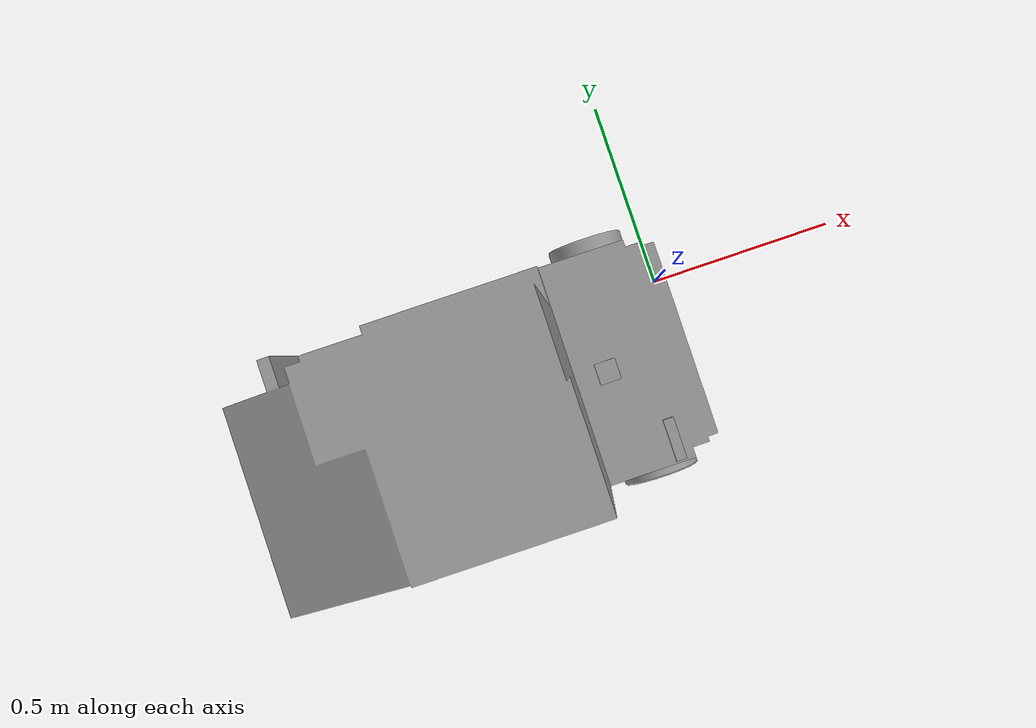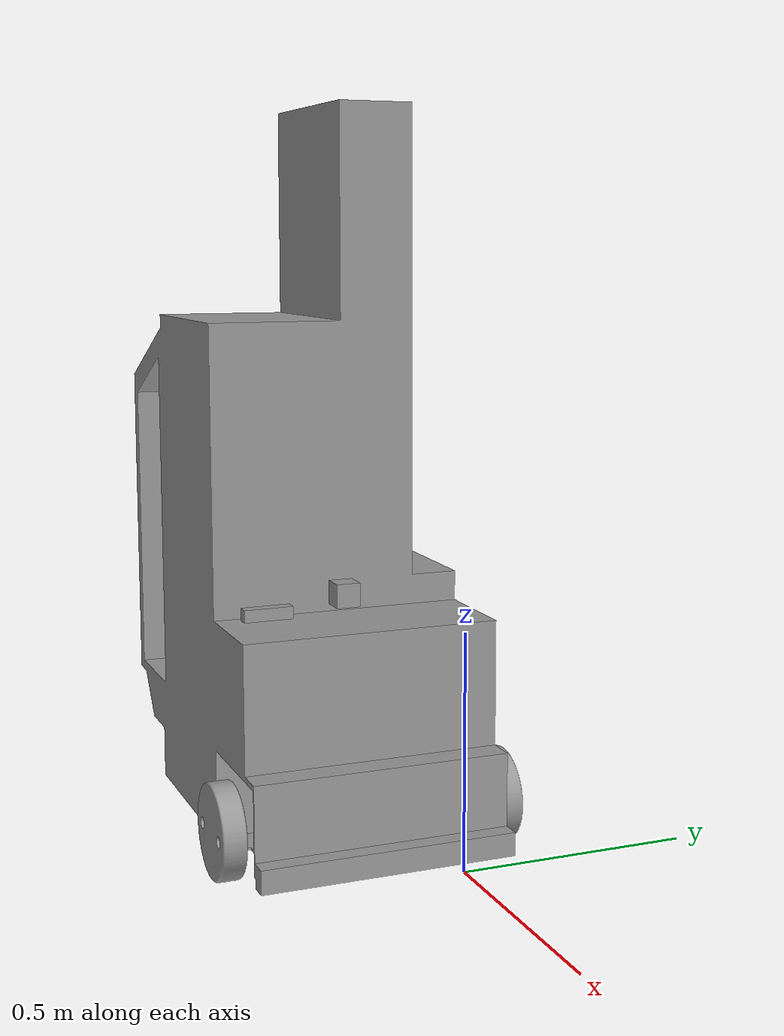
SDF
<?xml version='1.0'?>
<sdf version='1.6'>
  <model name='Robopac2'>
    <link name='main'>
      <inertial>
        <mass>1</mass>
        <inertia>
          <ixx>0.166667</ixx>
          <ixy>0</ixy>
          <ixz>0</ixz>
          <iyy>0.166667</iyy>
          <iyz>0</iyz>
          <izz>0.166667</izz>
        </inertia>
        <pose frame=''>0 0 0 0 -0 0</pose>
      </inertial>
      <pose frame=''>-0.422 -0.17 0.25 1.5708 0 -1.57079</pose>
      <gravity>1</gravity>
      <self_collide>0</self_collide>
      <kinematic>0</kinematic>
      <enable_wind>0</enable_wind>
      <visual name='visual'>
        <pose frame=''>-0.27 -0.22 -0.45 0 -0 0</pose>
        <geometry>
          <mesh>
            <uri>model://Robopac2/meshes/SuperSimple.STL</uri>
            <scale>0.001 0.001 0.001</scale>
          </mesh>
        </geometry>
        <material>
          <lighting>1</lighting>
          <script>
            <uri>file://media/materials/scripts/gazebo.material</uri>
            <name>Gazebo/Grey</name>
          </script>
          <shader type='pixel'>
            <normal_map>__default__</normal_map>
          </shader>
          <ambient>0.3 0.3 0.3 1</ambient>
          <diffuse>0.7 0.7 0.7 1</diffuse>
          <specular>0.01 0.01 0.01 1</specular>
          <emissive>0 0 0 1</emissive>
        </material>
        <transparency>0</transparency>
        <cast_shadows>1</cast_shadows>
      </visual>
      <collision name='collision'>
        <laser_retro>0</laser_retro>
        <max_contacts>10</max_contacts>
        <pose frame=''>-0.27 -0.22 -0.45 0 -0 0</pose>
        <geometry>
          <mesh>
            <uri>/home/ubuntu/Firmware/Tools/sitl_gazebo/models/Robopac2/meshes/SuperSimple.STL</uri>
            <scale>0.001 0.001 0.001</scale>
          </mesh>
        </geometry>
        <surface>
          <friction>
            <ode>
              <mu>1</mu>
              <mu2>1</mu2>
              <fdir1>0 0 0</fdir1>
              <slip1>0</slip1>
              <slip2>0</slip2>
            </ode>
            <torsional>
              <coefficient>1</coefficient>
              <patch_radius>0</patch_radius>
              <surface_radius>0</surface_radius>
              <use_patch_radius>1</use_patch_radius>
              <ode>
                <slip>0</slip>
              </ode>
            </torsional>
          </friction>
          <bounce>
            <restitution_coefficient>0</restitution_coefficient>
            <threshold>1e+06</threshold>
          </bounce>
          <contact>
            <collide_without_contact>0</collide_without_contact>
            <collide_without_contact_bitmask>1</collide_without_contact_bitmask>
            <collide_bitmask>1</collide_bitmask>
            <ode>
              <soft_cfm>0</soft_cfm>
              <soft_erp>0.2</soft_erp>
              <kp>1e+13</kp>
              <kd>1</kd>
              <max_vel>0.01</max_vel>
              <min_depth>0</min_depth>
            </ode>
            <bullet>
              <split_impulse>1</split_impulse>
              <split_impulse_penetration_threshold>-0.01</split_impulse_penetration_threshold>
              <soft_cfm>0</soft_cfm>
              <soft_erp>0.2</soft_erp>
              <kp>1e+13</kp>
              <kd>1</kd>
            </bullet>
          </contact>
        </surface>
      </collision>
    </link>
    <link name='backruotad'>
      <inertial>
        <mass>1</mass>
        <inertia>
          <ixx>0.1</ixx>
          <ixy>0</ixy>
          <ixz>0</ixz>
          <iyy>0.1</iyy>
          <iyz>0</iyz>
          <izz>0.1</izz>
        </inertia>
        <pose frame=''>0 0 0 0 -0 0</pose>
      </inertial>
      <pose frame=''>-0.848534 -0.352602 0.05 0 -0 0</pose>
      <gravity>1</gravity>
      <self_collide>0</self_collide>
      <kinematic>0</kinematic>
      <enable_wind>0</enable_wind>
      <visual name='visual'>
        <pose frame=''>0 0 0 0 -0 0</pose>
        <geometry>
          <sphere>
            <radius>0.05</radius>
          </sphere>
        </geometry>
        <material>
          <lighting>1</lighting>
          <script>
            <uri>file://media/materials/scripts/gazebo.material</uri>
            <name>Gazebo/Grey</name>
          </script>
          <shader type='pixel'>
            <normal_map>__default__</normal_map>
          </shader>
          <ambient>0.3 0.3 0.3 1</ambient>
          <diffuse>0.7 0.7 0.7 1</diffuse>
          <specular>0.01 0.01 0.01 1</specular>
          <emissive>0 0 0 1</emissive>
        </material>
        <transparency>0</transparency>
        <cast_shadows>1</cast_shadows>
      </visual>
      <collision name='collision'>
        <laser_retro>0</laser_retro>
        <max_contacts>10</max_contacts>
        <pose frame=''>0 0 0 0 -0 0</pose>
        <geometry>
          <sphere>
            <radius>0.05</radius>
          </sphere>
        </geometry>
        <surface>
          <friction>
            <ode>
              <mu>1</mu>
              <mu2>1</mu2>
              <fdir1>0 0 0</fdir1>
              <slip1>0</slip1>
              <slip2>0</slip2>
            </ode>
            <torsional>
              <coefficient>1</coefficient>
              <patch_radius>0</patch_radius>
              <surface_radius>0</surface_radius>
              <use_patch_radius>1</use_patch_radius>
              <ode>
                <slip>0</slip>
              </ode>
            </torsional>
          </friction>
          <bounce>
            <restitution_coefficient>0</restitution_coefficient>
            <threshold>1e+06</threshold>
          </bounce>
          <contact>
            <collide_without_contact>0</collide_without_contact>
            <collide_without_contact_bitmask>1</collide_without_contact_bitmask>
            <collide_bitmask>1</collide_bitmask>
            <ode>
              <soft_cfm>0</soft_cfm>
              <soft_erp>0.2</soft_erp>
              <kp>1e+13</kp>
              <kd>1</kd>
              <max_vel>0.01</max_vel>
              <min_depth>0</min_depth>
            </ode>
            <bullet>
              <split_impulse>1</split_impulse>
              <split_impulse_penetration_threshold>-0.01</split_impulse_penetration_threshold>
              <soft_cfm>0</soft_cfm>
              <soft_erp>0.2</soft_erp>
              <kp>1e+13</kp>
              <kd>1</kd>
            </bullet>
          </contact>
        </surface>
      </collision>
    </link>
    <link name='backruotas'>
      <inertial>
        <mass>1</mass>
        <inertia>
          <ixx>0.1</ixx>
          <ixy>0</ixy>
          <ixz>0</ixz>
          <iyy>0.1</iyy>
          <iyz>0</iyz>
          <izz>0.1</izz>
        </inertia>
        <pose frame=''>0 0 0 0 -0 0</pose>
      </inertial>
      <pose frame=''>-0.848534 -0.023095 0.05 0 -0 0</pose>
      <gravity>1</gravity>
      <self_collide>0</self_collide>
      <kinematic>0</kinematic>
      <enable_wind>0</enable_wind>
      <visual name='visual'>
        <pose frame=''>0 0 0 0 -0 0</pose>
        <geometry>
          <sphere>
            <radius>0.05</radius>
          </sphere>
        </geometry>
        <material>
          <lighting>1</lighting>
          <script>
            <uri>file://media/materials/scripts/gazebo.material</uri>
            <name>Gazebo/Grey</name>
          </script>
          <shader type='pixel'>
            <normal_map>__default__</normal_map>
          </shader>
          <ambient>0.3 0.3 0.3 1</ambient>
          <diffuse>0.7 0.7 0.7 1</diffuse>
          <specular>0.01 0.01 0.01 1</specular>
          <emissive>0 0 0 1</emissive>
        </material>
        <transparency>0</transparency>
        <cast_shadows>1</cast_shadows>
      </visual>
      <collision name='collision'>
        <laser_retro>0</laser_retro>
        <max_contacts>10</max_contacts>
        <pose frame=''>0 0 0 0 -0 0</pose>
        <geometry>
          <sphere>
            <radius>0.05</radius>
          </sphere>
        </geometry>
        <surface>
          <friction>
            <ode>
              <mu>1</mu>
              <mu2>1</mu2>
              <fdir1>0 0 0</fdir1>
              <slip1>0</slip1>
              <slip2>0</slip2>
            </ode>
            <torsional>
              <coefficient>1</coefficient>
              <patch_radius>0</patch_radius>
              <surface_radius>0</surface_radius>
              <use_patch_radius>1</use_patch_radius>
              <ode>
                <slip>0</slip>
              </ode>
            </torsional>
          </friction>
          <bounce>
            <restitution_coefficient>0</restitution_coefficient>
            <threshold>1e+06</threshold>
          </bounce>
          <contact>
            <collide_without_contact>0</collide_without_contact>
            <collide_without_contact_bitmask>1</collide_without_contact_bitmask>
            <collide_bitmask>1</collide_bitmask>
            <ode>
              <soft_cfm>0</soft_cfm>
              <soft_erp>0.2</soft_erp>
              <kp>1e+13</kp>
              <kd>1</kd>
              <max_vel>0.01</max_vel>
              <min_depth>0</min_depth>
            </ode>
            <bullet>
              <split_impulse>1</split_impulse>
              <split_impulse_penetration_threshold>-0.01</split_impulse_penetration_threshold>
              <soft_cfm>0</soft_cfm>
              <soft_erp>0.2</soft_erp>
              <kp>1e+13</kp>
              <kd>1</kd>
            </bullet>
          </contact>
        </surface>
      </collision>
    </link>
    <link name='frontruotad'>
      <inertial>
        <mass>1</mass>
        <inertia>
          <ixx>0.166667</ixx>
          <ixy>0</ixy>
          <ixz>0</ixz>
          <iyy>0.166667</iyy>
          <iyz>0</iyz>
          <izz>0.166667</izz>
        </inertia>
        <pose frame=''>0 0 0.1 0 -0 0</pose>
      </inertial>
      <pose frame=''>-0.148764 -0.469258 0.101033 1.5708 0 -1.5708</pose>
      <gravity>1</gravity>
      <self_collide>0</self_collide>
      <kinematic>0</kinematic>
      <enable_wind>0</enable_wind>
      <visual name='visual'>
        <pose frame=''>-0.3 -0.1 -0.1 0 -0 0</pose>
        <geometry>
          <mesh>
            <uri>model://Robopac2/meshes/RuotaD.STL</uri>
            <scale>0.001 0.001 0.001</scale>
          </mesh>
        </geometry>
        <material>
          <lighting>1</lighting>
          <script>
            <uri>file://media/materials/scripts/gazebo.material</uri>
            <name>Gazebo/Grey</name>
          </script>
          <shader type='pixel'>
            <normal_map>__default__</normal_map>
          </shader>
          <ambient>0.3 0.3 0.3 1</ambient>
          <diffuse>0.7 0.7 0.7 1</diffuse>
          <specular>0.01 0.01 0.01 1</specular>
          <emissive>0 0 0 1</emissive>
        </material>
        <transparency>0</transparency>
        <cast_shadows>1</cast_shadows>
      </visual>
      <collision name='collision'>
        <laser_retro>0</laser_retro>
        <max_contacts>10</max_contacts>
        <pose frame=''>-0.295 -0.1 -0.1 0 -0 0</pose>
        <geometry>
          <mesh>
            <uri>/home/ubuntu/Firmware/Tools/sitl_gazebo/models/Robopac2/meshes/RuotaD.STL</uri>
            <scale>0.001 0.001 0.001</scale>
          </mesh>
        </geometry>
        <surface>
          <friction>
            <ode>
              <mu>1</mu>
              <mu2>1</mu2>
              <fdir1>0 0 0</fdir1>
              <slip1>0</slip1>
              <slip2>0</slip2>
            </ode>
            <torsional>
              <coefficient>1</coefficient>
              <patch_radius>0</patch_radius>
              <surface_radius>0</surface_radius>
              <use_patch_radius>1</use_patch_radius>
              <ode>
                <slip>0</slip>
              </ode>
            </torsional>
          </friction>
          <bounce>
            <restitution_coefficient>0</restitution_coefficient>
            <threshold>1e+06</threshold>
          </bounce>
          <contact>
            <collide_without_contact>0</collide_without_contact>
            <collide_without_contact_bitmask>1</collide_without_contact_bitmask>
            <collide_bitmask>1</collide_bitmask>
            <ode>
              <soft_cfm>0</soft_cfm>
              <soft_erp>0.2</soft_erp>
              <kp>1e+13</kp>
              <kd>1</kd>
              <max_vel>0.01</max_vel>
              <min_depth>0</min_depth>
            </ode>
            <bullet>
              <split_impulse>1</split_impulse>
              <split_impulse_penetration_threshold>-0.01</split_impulse_penetration_threshold>
              <soft_cfm>0</soft_cfm>
              <soft_erp>0.2</soft_erp>
              <kp>1e+13</kp>
              <kd>1</kd>
            </bullet>
          </contact>
        </surface>
      </collision>
    </link>
    <link name='frontruotas'>
      <inertial>
        <mass>2</mass>
        <inertia>
          <ixx>0</ixx>
          <ixy>0</ixy>
          <ixz>0</ixz>
          <iyy>0</iyy>
          <iyz>0</iyz>
          <izz>0</izz>
        </inertia>
        <pose frame=''>0 0 0 0 -0 0</pose>
      </inertial>
      <pose frame=''>-0.15 0.135756 0.1 1.5708 0 -1.5708</pose>
      <gravity>1</gravity>
      <self_collide>0</self_collide>
      <kinematic>0</kinematic>
      <enable_wind>0</enable_wind>
      <visual name='visual'>
        <pose frame=''>-0.025 -0.1 -0.1 0 -0 0</pose>
        <geometry>
          <mesh>
            <uri>model://Robopac2/meshes/RuotaS.STL</uri>
            <scale>0.001 0.001 0.001</scale>
          </mesh>
        </geometry>
        <material>
          <lighting>1</lighting>
          <script>
            <uri>file://media/materials/scripts/gazebo.material</uri>
            <name>Gazebo/Grey</name>
          </script>
          <shader type='pixel'>
            <normal_map>__default__</normal_map>
          </shader>
          <ambient>0.3 0.3 0.3 1</ambient>
          <diffuse>0.7 0.7 0.7 1</diffuse>
          <specular>0.01 0.01 0.01 1</specular>
          <emissive>0 0 0 1</emissive>
        </material>
        <transparency>0</transparency>
        <cast_shadows>1</cast_shadows>
      </visual>
      <collision name='collision'>
        <laser_retro>0</laser_retro>
        <max_contacts>10</max_contacts>
        <pose frame=''>-0.025 -0.1 -0.1 0 -0 0</pose>
        <geometry>
          <mesh>
            <uri>/home/ubuntu/Firmware/Tools/sitl_gazebo/models/Robopac2/meshes/RuotaS.STL</uri>
            <scale>0.001 0.001 0.001</scale>
          </mesh>
        </geometry>
        <surface>
          <friction>
            <ode>
              <mu>1</mu>
              <mu2>1</mu2>
              <fdir1>0 0 0</fdir1>
              <slip1>0</slip1>
              <slip2>0</slip2>
            </ode>
            <torsional>
              <coefficient>1</coefficient>
              <patch_radius>0</patch_radius>
              <surface_radius>0</surface_radius>
              <use_patch_radius>1</use_patch_radius>
              <ode>
                <slip>0</slip>
              </ode>
            </torsional>
          </friction>
          <bounce>
            <restitution_coefficient>0</restitution_coefficient>
            <threshold>1e+06</threshold>
          </bounce>
          <contact>
            <collide_without_contact>0</collide_without_contact>
            <collide_without_contact_bitmask>1</collide_without_contact_bitmask>
            <collide_bitmask>1</collide_bitmask>
            <ode>
              <soft_cfm>0</soft_cfm>
              <soft_erp>0.2</soft_erp>
              <kp>1e+13</kp>
              <kd>1</kd>
              <max_vel>0.01</max_vel>
              <min_depth>0</min_depth>
            </ode>
            <bullet>
              <split_impulse>1</split_impulse>
              <split_impulse_penetration_threshold>-0.01</split_impulse_penetration_threshold>
              <soft_cfm>0</soft_cfm>
              <soft_erp>0.2</soft_erp>
              <kp>1e+13</kp>
              <kd>1</kd>
            </bullet>
          </contact>
        </surface>
      </collision>
    </link>
    <link name='support345'>
      <inertial>
        <mass>1</mass>
        <inertia>
          <ixx>0.166667</ixx>
          <ixy>0</ixy>
          <ixz>0</ixz>
          <iyy>0.166667</iyy>
          <iyz>0</iyz>
          <izz>0.166667</izz>
        </inertia>
        <pose frame=''>0 0 0 0 -0 0</pose>
      </inertial>
      <pose frame=''>-0.108422 -0.380095 0.551344 0 -0 0</pose>
      <gravity>1</gravity>
      <self_collide>0</self_collide>
      <kinematic>0</kinematic>
      <enable_wind>0</enable_wind>
      <visual name='visual'>
        <pose frame=''>0 0 0 0 -0 0</pose>
        <geometry>
          <box>
            <size>0.025 0.1 0.025</size>
          </box>
        </geometry>
        <material>
          <lighting>1</lighting>
          <script>
            <uri>file://media/materials/scripts/gazebo.material</uri>
            <name>Gazebo/Grey</name>
          </script>
          <shader type='pixel'>
            <normal_map>__default__</normal_map>
          </shader>
          <ambient>0.3 0.3 0.3 1</ambient>
          <diffuse>0.7 0.7 0.7 1</diffuse>
          <specular>0.01 0.01 0.01 1</specular>
          <emissive>0 0 0 1</emissive>
        </material>
        <transparency>0</transparency>
        <cast_shadows>1</cast_shadows>
      </visual>
      <collision name='collision'>
        <laser_retro>0</laser_retro>
        <max_contacts>10</max_contacts>
        <pose frame=''>0 0 0 0 -0 0</pose>
        <geometry>
          <box>
            <size>0.01 0.1 0.05</size>
          </box>
        </geometry>
        <surface>
          <friction>
            <ode>
              <mu>1</mu>
              <mu2>1</mu2>
              <fdir1>0 0 0</fdir1>
              <slip1>0</slip1>
              <slip2>0</slip2>
            </ode>
            <torsional>
              <coefficient>1</coefficient>
              <patch_radius>0</patch_radius>
              <surface_radius>0</surface_radius>
              <use_patch_radius>1</use_patch_radius>
              <ode>
                <slip>0</slip>
              </ode>
            </torsional>
          </friction>
          <bounce>
            <restitution_coefficient>0</restitution_coefficient>
            <threshold>1e+06</threshold>
          </bounce>
          <contact>
            <collide_without_contact>0</collide_without_contact>
            <collide_without_contact_bitmask>1</collide_without_contact_bitmask>
            <collide_bitmask>1</collide_bitmask>
            <ode>
              <soft_cfm>0</soft_cfm>
              <soft_erp>0.2</soft_erp>
              <kp>1e+13</kp>
              <kd>1</kd>
              <max_vel>0.01</max_vel>
              <min_depth>0</min_depth>
            </ode>
            <bullet>
              <split_impulse>1</split_impulse>
              <split_impulse_penetration_threshold>-0.01</split_impulse_penetration_threshold>
              <soft_cfm>0</soft_cfm>
              <soft_erp>0.2</soft_erp>
              <kp>1e+13</kp>
              <kd>1</kd>
            </bullet>
          </contact>
        </surface>
      </collision>
    </link>
    <link name='supportsensori'>
      <inertial>
        <mass>1</mass>
        <inertia>
          <ixx>0.166667</ixx>
          <ixy>0</ixy>
          <ixz>0</ixz>
          <iyy>0.166667</iyy>
          <iyz>0</iyz>
          <izz>0.166667</izz>
        </inertia>
        <pose frame=''>0 0 0 0 -0 0</pose>
      </inertial>
      <pose frame=''>-0.206369 -0.182956 0.554944 0 -0 0</pose>
      <gravity>1</gravity>
      <self_collide>0</self_collide>
      <kinematic>0</kinematic>
      <enable_wind>0</enable_wind>
      <visual name='visual'>
        <pose frame=''>0 0 0 0 -0 0</pose>
        <geometry>
          <box>
            <size>0.05 0.05 0.05</size>
          </box>
        </geometry>
        <material>
          <lighting>1</lighting>
          <script>
            <uri>file://media/materials/scripts/gazebo.material</uri>
            <name>Gazebo/Grey</name>
          </script>
          <shader type='pixel'>
            <normal_map>__default__</normal_map>
          </shader>
          <ambient>0.3 0.3 0.3 1</ambient>
          <diffuse>0.7 0.7 0.7 1</diffuse>
          <specular>0.01 0.01 0.01 1</specular>
          <emissive>0 0 0 1</emissive>
        </material>
        <transparency>0</transparency>
        <cast_shadows>1</cast_shadows>
      </visual>
      <collision name='collision'>
        <laser_retro>0</laser_retro>
        <max_contacts>10</max_contacts>
        <pose frame=''>0 0 0 0 -0 0</pose>
        <geometry>
          <box>
            <size>0.05 0.05 0.05</size>
          </box>
        </geometry>
        <surface>
          <friction>
            <ode>
              <mu>1</mu>
              <mu2>1</mu2>
              <fdir1>0 0 0</fdir1>
              <slip1>0</slip1>
              <slip2>0</slip2>
            </ode>
            <torsional>
              <coefficient>1</coefficient>
              <patch_radius>0</patch_radius>
              <surface_radius>0</surface_radius>
              <use_patch_radius>1</use_patch_radius>
              <ode>
                <slip>0</slip>
              </ode>
            </torsional>
          </friction>
          <bounce>
            <restitution_coefficient>0</restitution_coefficient>
            <threshold>1e+06</threshold>
          </bounce>
          <contact>
            <collide_without_contact>0</collide_without_contact>
            <collide_without_contact_bitmask>1</collide_without_contact_bitmask>
            <collide_bitmask>1</collide_bitmask>
            <ode>
              <soft_cfm>0</soft_cfm>
              <soft_erp>0.2</soft_erp>
              <kp>1e+13</kp>
              <kd>1</kd>
              <max_vel>0.01</max_vel>
              <min_depth>0</min_depth>
            </ode>
            <bullet>
              <split_impulse>1</split_impulse>
              <split_impulse_penetration_threshold>-0.01</split_impulse_penetration_threshold>
              <soft_cfm>0</soft_cfm>
              <soft_erp>0.2</soft_erp>
              <kp>1e+13</kp>
              <kd>1</kd>
            </bullet>
          </contact>
        </surface>
      </collision>
    </link>
    <joint name='jointantd' type='revolute'>
      <parent>main</parent>
      <child>frontruotad</child>
      <pose frame=''>0 0 0 0 -0 0</pose>
      <axis>
        <xyz>1 0 0</xyz>
        <use_parent_model_frame>0</use_parent_model_frame>
        <limit>
          <lower>-1.79769e+308</lower>
          <upper>1.79769e+308</upper>
          <effort>-1</effort>
          <velocity>-1</velocity>
        </limit>
        <dynamics>
          <spring_reference>0</spring_reference>
          <spring_stiffness>0</spring_stiffness>
          <damping>0</damping>
          <friction>0</friction>
        </dynamics>
      </axis>
      <physics>
        <ode>
          <limit>
            <cfm>0</cfm>
            <erp>0.2</erp>
          </limit>
          <suspension>
            <cfm>0</cfm>
            <erp>0.2</erp>
          </suspension>
        </ode>
      </physics>
    </joint>
    <joint name='jointants' type='revolute'>
      <parent>main</parent>
      <child>frontruotas</child>
      <pose frame=''>0 0 0 0 -0 0</pose>
      <axis>
        <xyz>1 0 0</xyz>
        <use_parent_model_frame>0</use_parent_model_frame>
        <limit>
          <lower>-1.79769e+308</lower>
          <upper>1.79769e+308</upper>
          <effort>-1</effort>
          <velocity>-1</velocity>
        </limit>
        <dynamics>
          <spring_reference>0</spring_reference>
          <spring_stiffness>0</spring_stiffness>
          <damping>0</damping>
          <friction>0</friction>
        </dynamics>
      </axis>
      <physics>
        <ode>
          <limit>
            <cfm>0</cfm>
            <erp>0.2</erp>
          </limit>
          <suspension>
            <cfm>0</cfm>
            <erp>0.2</erp>
          </suspension>
        </ode>
      </physics>
    </joint>
    <joint name='jointballd' type='revolute'>
      <parent>main</parent>
      <child>backruotad</child>
      <pose frame=''>0 0 0 0 -0 0</pose>
      <axis>
        <xyz>0 0 1</xyz>
        <use_parent_model_frame>0</use_parent_model_frame>
        <limit>
          <lower>-1e+16</lower>
          <upper>1e+16</upper>
          <effort>-1</effort>
          <velocity>-1</velocity>
        </limit>
        <dynamics>
          <spring_reference>0</spring_reference>
          <spring_stiffness>0</spring_stiffness>
          <damping>0</damping>
          <friction>0</friction>
        </dynamics>
      </axis>
      <physics>
        <ode>
          <limit>
            <cfm>0</cfm>
            <erp>0.2</erp>
          </limit>
          <suspension>
            <cfm>0</cfm>
            <erp>0.2</erp>
          </suspension>
        </ode>
      </physics>
    </joint>
    <joint name='jointballs' type='revolute'>
      <parent>main</parent>
      <child>backruotas</child>
      <pose frame=''>0 0 0 0 -0 0</pose>
      <axis>
        <xyz>0 0 1</xyz>
        <use_parent_model_frame>0</use_parent_model_frame>
        <limit>
          <lower>-1e+16</lower>
          <upper>1e+16</upper>
          <effort>-1</effort>
          <velocity>-1</velocity>
        </limit>
        <dynamics>
          <spring_reference>0</spring_reference>
          <spring_stiffness>0</spring_stiffness>
          <damping>0</damping>
          <friction>0</friction>
        </dynamics>
      </axis>
      <physics>
        <ode>
          <limit>
            <cfm>0</cfm>
            <erp>0.2</erp>
          </limit>
          <suspension>
            <cfm>0</cfm>
            <erp>0.2</erp>
          </suspension>
        </ode>
      </physics>
    </joint>
    <joint name='jointsensor' type='fixed'>
      <parent>main</parent>
      <child>supportsensori</child>
      <pose frame=''>0 0 0 0 -0 0</pose>
      <physics>
        <ode>
          <limit>
            <cfm>0</cfm>
            <erp>0.2</erp>
          </limit>
          <suspension>
            <cfm>0</cfm>
            <erp>0.2</erp>
          </suspension>
        </ode>
      </physics>
    </joint>
    <joint name='jointsupport345' type='revolute'>
      <parent>main</parent>
      <child>support345</child>
      <pose frame=''>0 0 0 0 -0 0</pose>
      <axis>
        <xyz>0 0 1</xyz>
        <use_parent_model_frame>0</use_parent_model_frame>
        <limit>
          <lower>-1.79769e+308</lower>
          <upper>1.79769e+308</upper>
          <effort>-1</effort>
          <velocity>-1</velocity>
        </limit>
        <dynamics>
          <spring_reference>0</spring_reference>
          <spring_stiffness>0</spring_stiffness>
          <damping>0</damping>
          <friction>0</friction>
        </dynamics>
      </axis>
      <physics>
        <ode>
          <limit>
            <cfm>0</cfm>
            <erp>0.2</erp>
          </limit>
          <suspension>
            <cfm>0</cfm>
            <erp>0.2</erp>
          </suspension>
        </ode>
      </physics>
    </joint>
    <static>0</static>
    <allow_auto_disable>1</allow_auto_disable>
    <plugin name='barometer_plugin' filename='libgazebo_barometer_plugin.so'>
      <robotNamespace/>
      <pubRate>50</pubRate>
      <baroTopic>/baro</baroTopic>
    </plugin>
    <plugin name='gazebo_imu_plugin' filename='libgazebo_imu_plugin.so'>
      <robotNamespace/>
      <linkName>supportsensori</linkName>
      <imuTopic>/imu</imuTopic>
      <gyroscopeNoiseDensity>0.0003394</gyroscopeNoiseDensity>
      <gyroscopeRandomWalk>3.8785e-05</gyroscopeRandomWalk>
      <gyroscopeBiasCorrelationTime>1000.0</gyroscopeBiasCorrelationTime>
      <gyroscopeTurnOnBiasSigma>0.0087</gyroscopeTurnOnBiasSigma>
      <accelerometerNoiseDensity>0.004</accelerometerNoiseDensity>
      <accelerometerRandomWalk>0.006</accelerometerRandomWalk>
      <accelerometerBiasCorrelationTime>300.0</accelerometerBiasCorrelationTime>
      <accelerometerTurnOnBiasSigma>0.196</accelerometerTurnOnBiasSigma>
    </plugin>
    <plugin name='gps_plugin' filename='libgazebo_gps_plugin.so'>
      <robotNamespace/>
      <gpsNoise>1</gpsNoise>
    </plugin>
    <plugin name='magnetometer_plugin' filename='libgazebo_magnetometer_plugin.so'>
      <robotNamespace/>
      <pubRate>100</pubRate>
      <noiseDensity>0.0004</noiseDensity>
      <randomWalk>6.4e-06</randomWalk>
      <biasCorrelationTime>600</biasCorrelationTime>
      <magTopic>/mag</magTopic>
    </plugin>
    <plugin name='mavlink_interface' filename='libgazebo_mavlink_interface.so'>
      <robotNamespace/>
      <imuSubTopic>/imu</imuSubTopic>
      <gpsSubTopic>/gps</gpsSubTopic>
      <magSubTopic>/mag</magSubTopic>
      <baroSubTopic>/baro</baroSubTopic>
      <mavlink_addr>INADDR_ANY</mavlink_addr>
      <mavlink_udp_port>14560</mavlink_udp_port>
      <serialEnabled>0</serialEnabled>
      <serialDevice>/dev/ttyACM0</serialDevice>
      <baudRate>921600</baudRate>
      <qgc_addr>INADDR_ANY</qgc_addr>
      <qgc_udp_port>14550</qgc_udp_port>
      <hil_mode>0</hil_mode>
      <hil_state_level>0</hil_state_level>
      <enable_lockstep>1</enable_lockstep>
      <use_tcp>1</use_tcp>
      <motorSpeedCommandPubTopic>/gazebo/command/motor_speed</motorSpeedCommandPubTopic>
      <control_channels>
        <channel name='jointants'>
          <input_index>5</input_index>
          <input_offset>0</input_offset>
          <input_scaling>40</input_scaling>
          <zero_position_disarmed>0</zero_position_disarmed>
          <zero_position_armed>0</zero_position_armed>
          <joint_control_type>velocity</joint_control_type>
          <joint_name>jointants</joint_name>
          <joint_control_pid>
            <p>50</p>
            <i>20</i>
            <d>2</d>
            <iMax>800</iMax>
            <iMin>-800</iMin>
            <cmdMax>1200</cmdMax>
            <cmdMin>-1200</cmdMin>
          </joint_control_pid>
        </channel>
        <channel name='jointantd'>
          <input_index>6</input_index>
          <input_offset>0</input_offset>
          <input_scaling>40</input_scaling>
          <zero_position_disarmed>0</zero_position_disarmed>
          <zero_position_armed>0</zero_position_armed>
          <joint_control_type>velocity</joint_control_type>
          <joint_name>jointantd</joint_name>
          <joint_control_pid>
            <p>50</p>
            <i>20</i>
            <d>2</d>
            <iMax>800</iMax>
            <iMin>-800</iMin>
            <cmdMax>1200</cmdMax>
            <cmdMin>-1200</cmdMin>
          </joint_control_pid>
        </channel>
      </control_channels>
    </plugin>
  </model>
</sdf>
